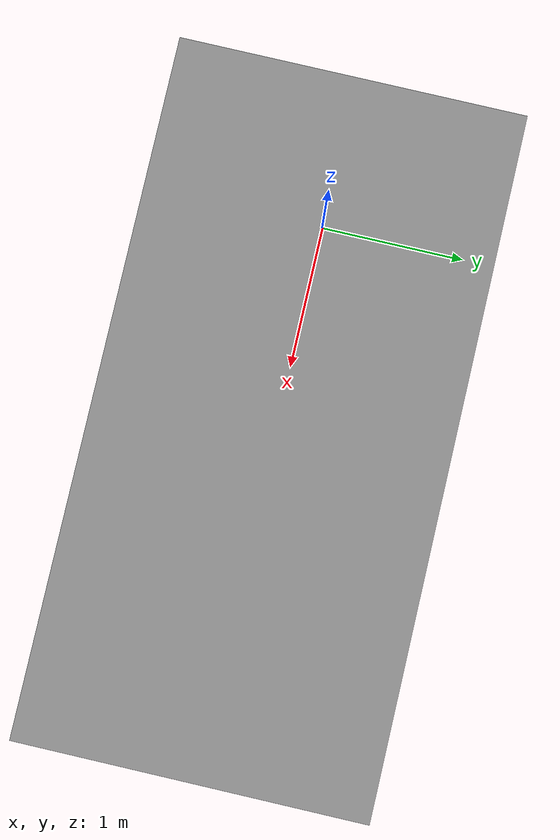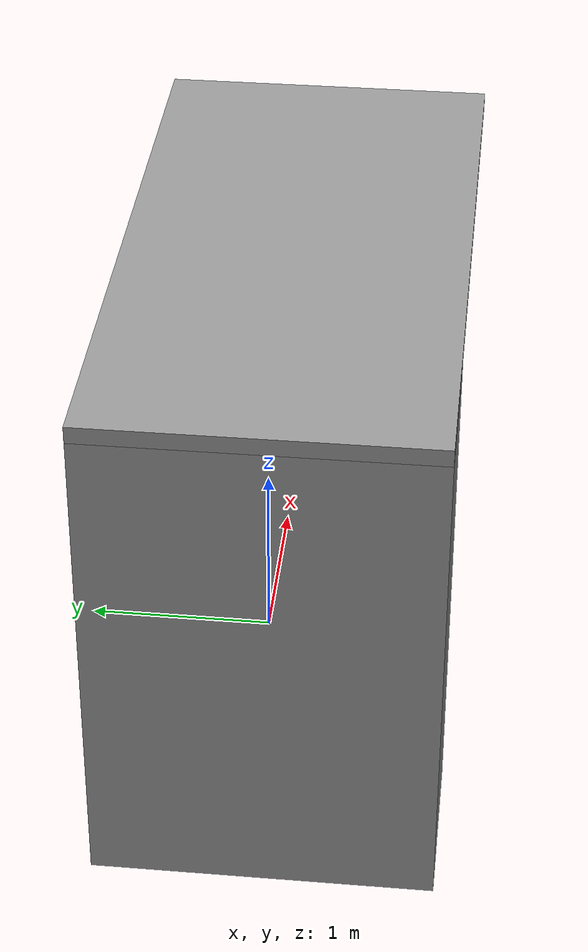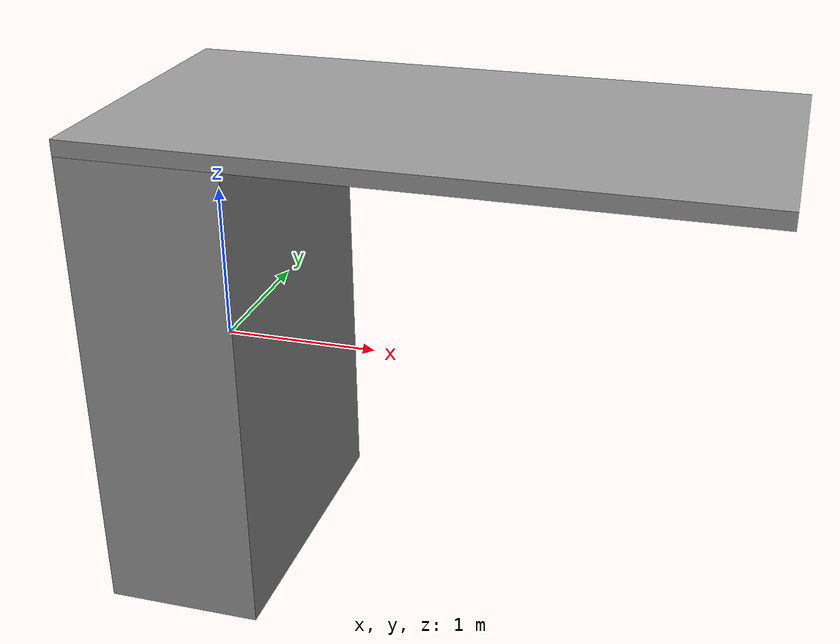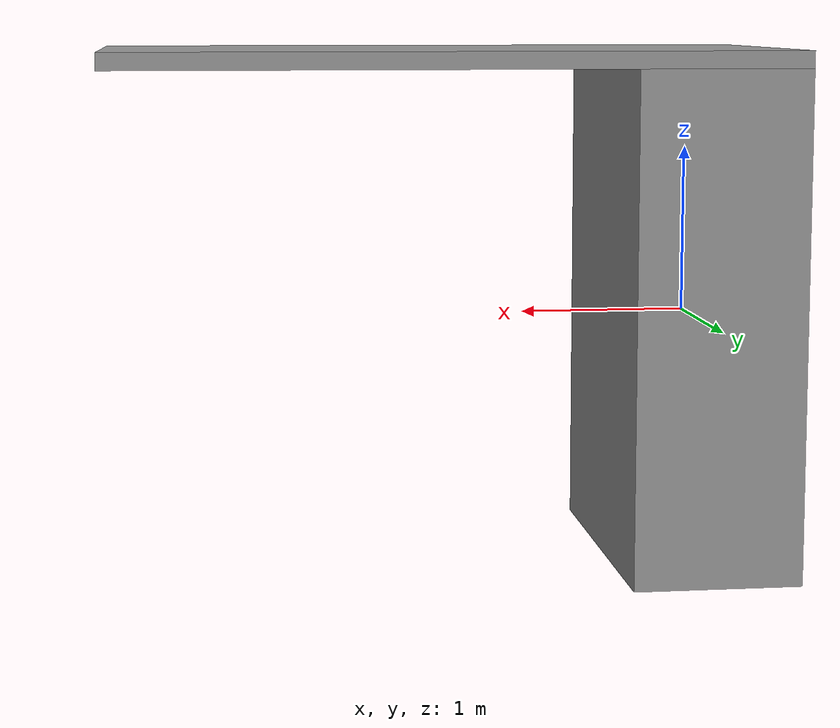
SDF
<?xml version='1.0'?>
<sdf version='1.7'>
  <model name='hang_model'>
    <link name='link'>
      <inertial>
        <mass>220</mass>
        <inertia>
          <ixx>238.333</ixx>
          <ixy>0</ixy>
          <ixz>0</ixz>
          <iyy>183.333</iyy>
          <iyz>0</iyz>
          <izz>91.6667</izz>
        </inertia>
        <pose>0 0 0 0 -0.03 0</pose>
      </inertial>
      <self_collide>0</self_collide>
      <enable_wind>0</enable_wind>
      <kinematic>0</kinematic>
      <pose>0 0 0 0 -0 0</pose>
      <gravity>1</gravity>
      <visual name='visual'>
        <geometry>
          <box>
            <size>1 2 3</size>
          </box>
        </geometry>
        <material>
          <script>
            <name>Gazebo/Grey</name>
            <uri>file://media/materials/scripts/gazebo.material</uri>
          </script>
          <shader type='pixel'>
            <normal_map>__default__</normal_map>
          </shader>
          <ambient>0.3 0.3 0.3 1</ambient>
          <diffuse>0.7 0.7 0.7 1</diffuse>
          <specular>0.01 0.01 0.01 1</specular>
          <emissive>0 0 0 1</emissive>
        </material>
        <pose>0 0 0 0 -0 0</pose>
        <transparency>0</transparency>
        <cast_shadows>1</cast_shadows>
      </visual>
      <collision name='collision'>
        <laser_retro>0</laser_retro>
        <max_contacts>10</max_contacts>
        <pose>0 0 0 0 -0 0</pose>
        <geometry>
          <box>
            <size>1 2 3</size>
          </box>
        </geometry>
        <surface>
          <friction>
            <ode>
              <mu>1</mu>
              <mu2>1</mu2>
              <fdir1>0 0 0</fdir1>
              <slip1>0</slip1>
              <slip2>0</slip2>
            </ode>
            <torsional>
              <coefficient>1</coefficient>
              <patch_radius>0</patch_radius>
              <surface_radius>0</surface_radius>
              <use_patch_radius>1</use_patch_radius>
              <ode>
                <slip>0</slip>
              </ode>
            </torsional>
          </friction>
          <bounce>
            <restitution_coefficient>0</restitution_coefficient>
            <threshold>1e+06</threshold>
          </bounce>
          <contact>
            <collide_without_contact>0</collide_without_contact>
            <collide_without_contact_bitmask>1</collide_without_contact_bitmask>
            <collide_bitmask>1</collide_bitmask>
            <ode>
              <soft_cfm>0</soft_cfm>
              <soft_erp>0.2</soft_erp>
              <kp>1e+13</kp>
              <kd>1</kd>
              <max_vel>0.01</max_vel>
              <min_depth>0</min_depth>
            </ode>
            <bullet>
              <split_impulse>1</split_impulse>
              <split_impulse_penetration_threshold>-0.01</split_impulse_penetration_threshold>
              <soft_cfm>0</soft_cfm>
              <soft_erp>0.2</soft_erp>
              <kp>1e+13</kp>
              <kd>1</kd>
            </bullet>
          </contact>
        </surface>
      </collision>
    </link>
    <link name='link_clone'>
      <inertial>
        <mass>10</mass>
        <inertia>
          <ixx>3.34167</ixx>
          <ixy>0</ixy>
          <ixz>0</ixz>
          <iyy>13.3417</iyy>
          <iyz>0</iyz>
          <izz>16.6667</izz>
        </inertia>
        <pose>0 0 0 0 -0 0</pose>
      </inertial>
      <self_collide>0</self_collide>
      <enable_wind>0</enable_wind>
      <kinematic>0</kinematic>
      <pose>1.5 -0 1.55 0 -0 -0.000177</pose>
      <gravity>1</gravity>
      <visual name='visual'>
        <geometry>
          <box>
            <size>4 2 0.1</size>
          </box>
        </geometry>
        <material>
          <script>
            <name>Gazebo/Grey</name>
            <uri>file://media/materials/scripts/gazebo.material</uri>
          </script>
          <shader type='pixel'>
            <normal_map>__default__</normal_map>
          </shader>
          <ambient>0.3 0.3 0.3 1</ambient>
          <diffuse>0.7 0.7 0.7 1</diffuse>
          <specular>0.01 0.01 0.01 1</specular>
          <emissive>0 0 0 1</emissive>
        </material>
        <pose>0 0 0 0 -0 0</pose>
        <transparency>0</transparency>
        <cast_shadows>1</cast_shadows>
      </visual>
      <collision name='collision'>
        <laser_retro>0</laser_retro>
        <max_contacts>10</max_contacts>
        <pose>0 0 0 0 -0 0</pose>
        <geometry>
          <box>
            <size>4 2 0.1</size>
          </box>
        </geometry>
        <surface>
          <friction>
            <ode>
              <mu>1</mu>
              <mu2>1</mu2>
              <fdir1>0 0 0</fdir1>
              <slip1>0</slip1>
              <slip2>0</slip2>
            </ode>
            <torsional>
              <coefficient>1</coefficient>
              <patch_radius>0</patch_radius>
              <surface_radius>0</surface_radius>
              <use_patch_radius>1</use_patch_radius>
              <ode>
                <slip>0</slip>
              </ode>
            </torsional>
          </friction>
          <bounce>
            <restitution_coefficient>0</restitution_coefficient>
            <threshold>1e+06</threshold>
          </bounce>
          <contact>
            <collide_without_contact>0</collide_without_contact>
            <collide_without_contact_bitmask>1</collide_without_contact_bitmask>
            <collide_bitmask>1</collide_bitmask>
            <ode>
              <soft_cfm>0</soft_cfm>
              <soft_erp>0.2</soft_erp>
              <kp>1e+13</kp>
              <kd>1</kd>
              <max_vel>0.01</max_vel>
              <min_depth>0</min_depth>
            </ode>
            <bullet>
              <split_impulse>1</split_impulse>
              <split_impulse_penetration_threshold>-0.01</split_impulse_penetration_threshold>
              <soft_cfm>0</soft_cfm>
              <soft_erp>0.2</soft_erp>
              <kp>1e+13</kp>
              <kd>1</kd>
            </bullet>
          </contact>
        </surface>
      </collision>
    </link>
    <joint name='link_JOINT_0' type='fixed'>
      <parent>link</parent>
      <child>link_clone</child>
      <pose>-1.5 0 0 0 -0 0</pose>
      <physics>
        <ode>
          <limit>
            <cfm>0</cfm>
            <erp>0.2</erp>
          </limit>
          <suspension>
            <cfm>0</cfm>
            <erp>0.2</erp>
          </suspension>
        </ode>
      </physics>
    </joint>
    <static>0</static>
    <allow_auto_disable>1</allow_auto_disable>
  </model>
</sdf>
